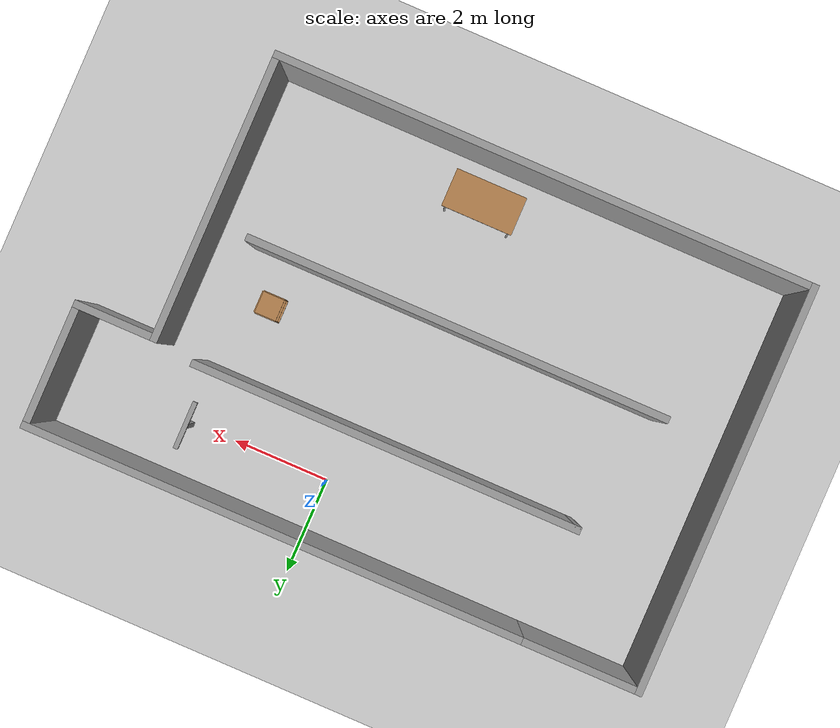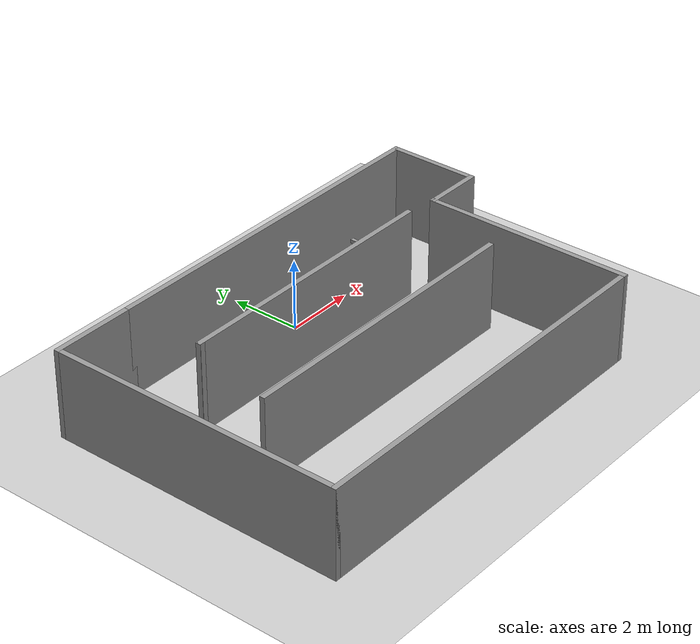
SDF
<sdf version="1.6">
 <world name="default">
  <plugin name="hello" filename="libhello.so"/>
  <plugin name="hello" filename="libhello.so"/>
  <plugin name="collision_map_creator" filename="libcollision_map_creator.so"/>
  <light name="sun" type="directional">
   <pose>0 0 10 0 -0 0</pose>
   <diffuse>0.8 0.8 0.8 1</diffuse>
   <specular>0.2 0.2 0.2 1</specular>
   <attenuation>
    <range>1000</range>
    <constant>0.9</constant>
    <linear>0.01</linear>
    <quadratic>0.001</quadratic>
   </attenuation>
   <direction>-0.5 0.1 -0.9</direction>
  </light>
  <model name="ground_plane">
   <static>1</static>
   <link name="link">
    <collision name="collision">
     <geometry><plane><normal>0 0 1</normal><size>100 100</size></plane></geometry>
     <surface>
      <contact><collide_bitmask>65535</collide_bitmask></contact>
      <friction><ode><mu>100</mu><mu2>50</mu2></ode></friction>
     </surface>
    </collision>
    <visual name="visual">
     <cast_shadows>0</cast_shadows>
     <geometry><plane><normal>0 0 1</normal><size>100 100</size></plane></geometry>
     <material>
      <script><uri>file://media/materials/scripts/gazebo.material</uri><name>Gazebo/Grey</name></script>
     </material>
    </visual>
   </link>
  </model>
  <gravity>0 0 -9.8</gravity>
  <magnetic_field>6e-06 2.3e-05 -4.2e-05</magnetic_field>
  <atmosphere type="adiabatic"/>
  <physics name="default_physics" default="0" type="ode">
   <max_step_size>0.001</max_step_size>
   <real_time_factor>1</real_time_factor>
   <real_time_update_rate>1000</real_time_update_rate>
  </physics>
  <scene><ambient>0.4 0.4 0.4 1</ambient><background>0.7 0.7 0.7 1</background><shadows>1</shadows></scene>
  <spherical_coordinates>
   <surface_model>EARTH_WGS84</surface_model>
   <latitude_deg>0</latitude_deg>
   <longitude_deg>0</longitude_deg>
   <elevation>0</elevation>
   <heading_deg>0</heading_deg>
  </spherical_coordinates>
  <model name="anotherrone_clone_0">
   <link name="link_0_clone">
    <pose>1.00397 -1.20326 1.05 1.57079 -0 0</pose>
    <inertial>
     <mass>1</mass>
     <inertia>
      <ixx>0.166667</ixx>
      <ixy>0</ixy>
      <ixz>0</ixz>
      <iyy>0.166667</iyy>
      <iyz>0</iyz>
      <izz>0.166667</izz>
     </inertia>
    </inertial>
    <visual name="visual">
     <geometry><box><size>0.1 0.1 1</size></box></geometry>
     <material>
      <lighting>1</lighting>
      <script><uri>file://media/materials/scripts/gazebo.material</uri><name>Gazebo/Grey</name></script>
      <shader type="pixel"><normal_map>__default__</normal_map></shader>
      <ambient>0.3 0.3 0.3 1</ambient>
      <diffuse>0.7 0.7 0.7 1</diffuse>
      <specular>0.01 0.01 0.01 1</specular>
      <emissive>0 0 0 1</emissive>
     </material>
    </visual>
    <collision name="collision">
     <geometry><box><size>0.1 0.1 1</size></box></geometry>
     <surface>
      <friction>
       <ode><mu>1</mu><mu2>1</mu2><fdir1>0 0 0</fdir1><slip1>0</slip1><slip2>0</slip2></ode>
       <torsional>
        <coefficient>1</coefficient>
        <patch_radius>0</patch_radius>
        <surface_radius>0</surface_radius>
        <use_patch_radius>1</use_patch_radius>
        <ode><slip>0</slip></ode>
       </torsional>
      </friction>
      <bounce><restitution_coefficient>0</restitution_coefficient><threshold>1e+06</threshold></bounce>
      <contact>
       <collide_without_contact>0</collide_without_contact>
       <collide_without_contact_bitmask>1</collide_without_contact_bitmask>
       <collide_bitmask>1</collide_bitmask>
       <ode>
        <soft_cfm>0</soft_cfm>
        <soft_erp>0.2</soft_erp>
        <kp>1e+13</kp>
        <kd>1</kd>
        <max_vel>0.01</max_vel>
        <min_depth>0</min_depth>
       </ode>
       <bullet>
        <split_impulse>1</split_impulse>
        <split_impulse_penetration_threshold>-0.01</split_impulse_penetration_threshold>
        <soft_cfm>0</soft_cfm>
        <soft_erp>0.2</soft_erp>
        <kp>1e+13</kp>
        <kd>1</kd>
       </bullet>
      </contact>
     </surface>
    </collision>
   </link>
   <link name="link_0_clone_clone">
    <pose>1.00397 -1.20326 0.499999 0 -0 0</pose>
    <inertial>
     <mass>1</mass>
     <inertia>
      <ixx>0.166667</ixx>
      <ixy>0</ixy>
      <ixz>0</ixz>
      <iyy>0.166667</iyy>
      <iyz>0</iyz>
      <izz>0.166667</izz>
     </inertia>
    </inertial>
    <visual name="visual">
     <geometry><box><size>0.1 0.1 1</size></box></geometry>
     <material>
      <lighting>1</lighting>
      <script><uri>file://media/materials/scripts/gazebo.material</uri><name>Gazebo/Grey</name></script>
      <shader type="pixel"><normal_map>__default__</normal_map></shader>
      <ambient>0.3 0.3 0.3 1</ambient>
      <diffuse>0.7 0.7 0.7 1</diffuse>
      <specular>0.01 0.01 0.01 1</specular>
      <emissive>0 0 0 1</emissive>
     </material>
    </visual>
    <collision name="collision">
     <geometry><box><size>0.1 0.1 1</size></box></geometry>
     <surface>
      <friction>
       <ode><mu>1</mu><mu2>1</mu2><fdir1>0 0 0</fdir1><slip1>0</slip1><slip2>0</slip2></ode>
       <torsional>
        <coefficient>1</coefficient>
        <patch_radius>0</patch_radius>
        <surface_radius>0</surface_radius>
        <use_patch_radius>1</use_patch_radius>
        <ode><slip>0</slip></ode>
       </torsional>
      </friction>
      <bounce><restitution_coefficient>0</restitution_coefficient><threshold>1e+06</threshold></bounce>
      <contact>
       <collide_without_contact>0</collide_without_contact>
       <collide_without_contact_bitmask>1</collide_without_contact_bitmask>
       <collide_bitmask>1</collide_bitmask>
       <ode>
        <soft_cfm>0</soft_cfm>
        <soft_erp>0.2</soft_erp>
        <kp>1e+13</kp>
        <kd>1</kd>
        <max_vel>0.01</max_vel>
        <min_depth>0</min_depth>
       </ode>
       <bullet>
        <split_impulse>1</split_impulse>
        <split_impulse_penetration_threshold>-0.01</split_impulse_penetration_threshold>
        <soft_cfm>0</soft_cfm>
        <soft_erp>0.2</soft_erp>
        <kp>1e+13</kp>
        <kd>1</kd>
       </bullet>
      </contact>
     </surface>
    </collision>
   </link>
   <joint name="link_0_clone_clone_JOINT_0" type="revolute">
    <parent>link_0_clone_clone</parent>
    <child>link_0_clone</child>
    <axis>
     <xyz>0 -1 0</xyz>
     <use_parent_model_frame>0</use_parent_model_frame>
     <limit>
      <lower>-1.79769e+308</lower>
      <upper>1.79769e+308</upper>
      <effort>-1</effort>
      <velocity>-1</velocity>
     </limit>
     <dynamics>
      <spring_reference>0</spring_reference>
      <spring_stiffness>0</spring_stiffness>
      <damping>0</damping>
     </dynamics>
    </axis>
    <physics>
     <ode><limit><cfm>0</cfm><erp>0.2</erp></limit><suspension><cfm>0</cfm><erp>0.2</erp></suspension></ode>
    </physics>
   </joint>
   <static>0</static>
   <pose>1.95543 1.23393 -1.1e-05 -7e-06 -4e-06 5.5e-05</pose>
  </model>
  <model name="cabinet">
   <static>1</static>
   <link name="cabinet_bottom_plate">
    <inertial>
     <pose>0 0 -1 0 -0 0</pose>
     <inertia><ixx>2.05</ixx><ixy>0</ixy><ixz>0</ixz><iyy>2.05</iyy><iyz>0</iyz><izz>2.05</izz></inertia>
     <mass>25</mass>
    </inertial>
    <collision name="cabinet_bottom_plate_geom">
     <pose>0 0 0.01 0 -0 0</pose>
     <geometry><box><size>0.45 0.45 0.02</size></box></geometry>
    </collision>
    <visual name="cabinet_bottom_plate_geom_visual">
     <pose>0 0 0.01 0 -0 0</pose>
     <geometry><box><size>0.45 0.45 0.02</size></box></geometry>
     <material>
      <script><uri>file://media/materials/scripts/gazebo.material</uri><name>Gazebo/Wood</name></script>
     </material>
    </visual>
    <collision name="cabinet_bottom_plate_geom_cabinet_back_plate">
     <pose>0.235 0 0.51 0 -0 0</pose>
     <geometry><box><size>0.02 0.45 1.02</size></box></geometry>
    </collision>
    <visual name="cabinet_bottom_plate_geom_cabinet_back_plate_visual">
     <pose>0.235 0 0.51 0 -0 0</pose>
     <geometry><box><size>0.02 0.45 1.02</size></box></geometry>
     <material>
      <script><uri>file://media/materials/scripts/gazebo.material</uri><name>Gazebo/Wood</name></script>
     </material>
    </visual>
    <collision name="cabinet_bottom_plate_geom_cabinet_left_plate">
     <pose>0 0.235 0.51 0 -0 0</pose>
     <geometry><box><size>0.45 0.02 1.02</size></box></geometry>
    </collision>
    <visual name="cabinet_bottom_plate_geom_cabinet_left_plate_visual">
     <pose>0 0.235 0.51 0 -0 0</pose>
     <geometry><box><size>0.45 0.02 1.02</size></box></geometry>
     <material>
      <script><uri>file://media/materials/scripts/gazebo.material</uri><name>Gazebo/Wood</name></script>
     </material>
    </visual>
    <collision name="cabinet_bottom_plate_geom_cabinet_middle_plate">
     <pose>0 0 0.51 0 -0 0</pose>
     <geometry><box><size>0.45 0.45 0.02</size></box></geometry>
    </collision>
    <visual name="cabinet_bottom_plate_geom_cabinet_middle_plate_visual">
     <pose>0 0 0.51 0 -0 0</pose>
     <geometry><box><size>0.45 0.45 0.02</size></box></geometry>
     <material>
      <script><uri>file://media/materials/scripts/gazebo.material</uri><name>Gazebo/Wood</name></script>
     </material>
    </visual>
    <collision name="cabinet_bottom_plate_geom_cabinet_right_plate">
     <pose>0 -0.235 0.51 0 -0 0</pose>
     <geometry><box><size>0.45 0.02 1.02</size></box></geometry>
    </collision>
    <visual name="cabinet_bottom_plate_geom_cabinet_right_plate_visual">
     <pose>0 -0.235 0.51 0 -0 0</pose>
     <geometry><box><size>0.45 0.02 1.02</size></box></geometry>
     <material>
      <script><uri>file://media/materials/scripts/gazebo.material</uri><name>Gazebo/Wood</name></script>
     </material>
    </visual>
    <collision name="cabinet_bottom_plate_geom_cabinet_top_plate">
     <pose>0 0 1.01 0 -0 0</pose>
     <geometry><box><size>0.45 0.45 0.02</size></box></geometry>
    </collision>
    <visual name="cabinet_bottom_plate_geom_cabinet_top_plate_visual">
     <pose>0 0 1.01 0 -0 0</pose>
     <geometry><box><size>0.45 0.45 0.02</size></box></geometry>
     <material>
      <script><uri>file://media/materials/scripts/gazebo.material</uri><name>Gazebo/Wood</name></script>
     </material>
    </visual>
   </link>
   <pose>2.37507 -2.78574 0 0 -0 0</pose>
  </model>
  <model name="table">
   <static>1</static>
   <link name="link">
    <collision name="surface">
     <pose>0 0 1 0 -0 0</pose>
     <geometry><box><size>1.5 0.8 0.03</size></box></geometry>
     <surface><friction><ode><mu>0.6</mu><mu2>0.6</mu2></ode></friction></surface>
    </collision>
    <visual name="visual1">
     <pose>0 0 1 0 -0 0</pose>
     <geometry><box><size>1.5 0.8 0.03</size></box></geometry>
     <material>
      <script><uri>file://media/materials/scripts/gazebo.material</uri><name>Gazebo/Wood</name></script>
     </material>
    </visual>
    <collision name="front_left_leg">
     <pose>0.68 0.38 0.5 0 -0 0</pose>
     <geometry><cylinder><radius>0.02</radius><length>1</length></cylinder></geometry>
    </collision>
    <visual name="front_left_leg">
     <pose>0.68 0.38 0.5 0 -0 0</pose>
     <geometry><cylinder><radius>0.02</radius><length>1</length></cylinder></geometry>
     <material>
      <script><uri>file://media/materials/scripts/gazebo.material</uri><name>Gazebo/Grey</name></script>
     </material>
    </visual>
    <collision name="front_right_leg">
     <pose>0.68 -0.38 0.5 0 -0 0</pose>
     <geometry><cylinder><radius>0.02</radius><length>1</length></cylinder></geometry>
    </collision>
    <visual name="front_right_leg">
     <pose>0.68 -0.38 0.5 0 -0 0</pose>
     <geometry><cylinder><radius>0.02</radius><length>1</length></cylinder></geometry>
     <material>
      <script><uri>file://media/materials/scripts/gazebo.material</uri><name>Gazebo/Grey</name></script>
     </material>
    </visual>
    <collision name="back_right_leg">
     <pose>-0.68 -0.38 0.5 0 -0 0</pose>
     <geometry><cylinder><radius>0.02</radius><length>1</length></cylinder></geometry>
    </collision>
    <visual name="back_right_leg">
     <pose>-0.68 -0.38 0.5 0 -0 0</pose>
     <geometry><cylinder><radius>0.02</radius><length>1</length></cylinder></geometry>
     <material>
      <script><uri>file://media/materials/scripts/gazebo.material</uri><name>Gazebo/Grey</name></script>
     </material>
    </visual>
    <collision name="back_left_leg">
     <pose>-0.68 0.38 0.5 0 -0 0</pose>
     <geometry><cylinder><radius>0.02</radius><length>1</length></cylinder></geometry>
    </collision>
    <visual name="back_left_leg">
     <pose>-0.68 0.38 0.5 0 -0 0</pose>
     <geometry><cylinder><radius>0.02</radius><length>1</length></cylinder></geometry>
     <material>
      <script><uri>file://media/materials/scripts/gazebo.material</uri><name>Gazebo/Grey</name></script>
     </material>
    </visual>
   </link>
   <pose>-0.699943 -6.36243 0 0 -0 0</pose>
  </model>
  <model name="multiplePaths">
   <pose>-0.75 -3.035 0 0 -0 0</pose>
   <link name="Wall_0">
    <collision name="Wall_0_Collision">
     <geometry><box><size>8.75 0.15 2.5</size></box></geometry>
     <pose>0 0 1.25 0 -0 0</pose>
    </collision>
    <visual name="Wall_0_Visual">
     <pose>0 0 1.25 0 -0 0</pose>
     <geometry><box><size>8.75 0.15 2.5</size></box></geometry>
     <material>
      <script><uri>file://media/materials/scripts/gazebo.material</uri><name>Gazebo/Grey</name></script>
      <ambient>1 1 1 1</ambient>
     </material>
     <meta><layer>0</layer></meta>
    </visual>
    <pose>-0.45 -0.775 0 0 -0 0</pose>
   </link>
   <link name="Wall_2">
    <collision name="Wall_2_Collision">
     <geometry><box><size>8.05247 0.15 2.5</size></box></geometry>
     <pose>0 0 1.25 0 -0 0</pose>
    </collision>
    <visual name="Wall_2_Visual">
     <pose>0 0 1.25 0 -0 0</pose>
     <geometry><box><size>8.05247 0.15 2.5</size></box></geometry>
     <material>
      <script><uri>file://media/materials/scripts/gazebo.material</uri><name>Gazebo/Grey</name></script>
      <ambient>1 1 1 1</ambient>
     </material>
     <meta><layer>0</layer></meta>
    </visual>
    <pose>-0.092561 1.825 0 0 -0 3.14159</pose>
   </link>
   <link name="Wall_21">
    <collision name="Wall_21_Collision">
     <geometry><box><size>8.5 0.15 2.5</size></box></geometry>
     <pose>0 0 1.25 0 -0 0</pose>
    </collision>
    <visual name="Wall_21_Visual">
     <pose>0 0 1.25 0 -0 0</pose>
     <geometry><box><size>8.5 0.15 2.5</size></box></geometry>
     <material>
      <script><uri>file://media/materials/scripts/gazebo.material</uri><name>Gazebo/Grey</name></script>
      <ambient>1 1 1 1</ambient>
     </material>
     <meta><layer>0</layer></meta>
    </visual>
    <pose>-6.35 0 0 0 0 -1.5708</pose>
   </link>
   <link name="Wall_22">
    <collision name="Wall_22_Collision">
     <geometry><box><size>11.25 0.15 2.5</size></box></geometry>
     <pose>0 0 1.25 0 -0 0</pose>
    </collision>
    <visual name="Wall_22_Visual">
     <pose>0 0 1.25 0 -0 0</pose>
     <geometry><box><size>11.25 0.15 2.5</size></box></geometry>
     <material>
      <script><uri>file://media/materials/scripts/gazebo.material</uri><name>Gazebo/Grey</name></script>
      <ambient>1 1 1 1</ambient>
     </material>
     <meta><layer>0</layer></meta>
    </visual>
    <pose>-0.8 -4.175 0 0 -0 0</pose>
   </link>
   <link name="Wall_24">
    <collision name="Wall_24_Collision">
     <geometry><box><size>6 0.15 2.5</size></box></geometry>
     <pose>0 0 1.25 0 -0 0</pose>
    </collision>
    <visual name="Wall_24_Visual">
     <pose>0 0 1.25 0 -0 0</pose>
     <geometry><box><size>6 0.15 2.5</size></box></geometry>
     <material>
      <script><uri>file://media/materials/scripts/gazebo.material</uri><name>Gazebo/Grey</name></script>
      <ambient>1 1 1 1</ambient>
     </material>
     <meta><layer>0</layer></meta>
    </visual>
    <pose>4.75 -1.25 0 0 -0 1.5708</pose>
   </link>
   <link name="Wall_29">
    <collision name="Wall_29_Collision">
     <geometry><box><size>2.5 0.15 2.5</size></box></geometry>
     <pose>0 0 1.25 0 -0 0</pose>
    </collision>
    <visual name="Wall_29_Visual">
     <pose>0 0 1.25 0 -0 0</pose>
     <geometry><box><size>2.5 0.15 2.5</size></box></geometry>
     <material>
      <script><uri>file://media/materials/scripts/gazebo.material</uri><name>Gazebo/Grey</name></script>
      <ambient>1 1 1 1</ambient>
     </material>
     <meta><layer>0</layer></meta>
    </visual>
    <pose>-5.175 4.175 0 0 -0 0</pose>
   </link>
   <link name="Wall_3">
    <collision name="Wall_3_Collision">
     <geometry><box><size>0.15 0.15 2.5</size></box></geometry>
     <pose>0 0 1.25 0 -0 0</pose>
    </collision>
    <visual name="Wall_3_Visual">
     <pose>0 0 1.25 0 -0 0</pose>
     <geometry><box><size>0.15 0.15 2.5</size></box></geometry>
     <material>
      <script><uri>file://media/materials/scripts/gazebo.material</uri><name>Gazebo/Grey</name></script>
      <ambient>1 1 1 1</ambient>
     </material>
     <meta><layer>0</layer></meta>
    </visual>
    <pose>-4.03512 1.825 0 0 -0 0</pose>
   </link>
   <link name="Wall_32">
    <collision name="Wall_32_Collision">
     <geometry><box><size>10.5 0.15 2.5</size></box></geometry>
     <pose>0 0 1.25 0 -0 0</pose>
    </collision>
    <visual name="Wall_32_Visual">
     <pose>0 0 1.25 0 -0 0</pose>
     <geometry><box><size>10.5 0.15 2.5</size></box></geometry>
     <material>
      <script><uri>file://media/materials/scripts/gazebo.material</uri><name>Gazebo/Grey</name></script>
      <ambient>1 1 1 1</ambient>
     </material>
     <meta><layer>0</layer></meta>
    </visual>
    <pose>1.175 4.175 0 0 -0 0</pose>
   </link>
   <link name="Wall_34">
    <collision name="Wall_34_Collision">
     <geometry><box><size>2.5 0.15 2.5</size></box></geometry>
     <pose>0 0 1.25 0 -0 0</pose>
    </collision>
    <visual name="Wall_34_Visual">
     <pose>0 0 1.25 0 -0 0</pose>
     <geometry><box><size>2.5 0.15 2.5</size></box></geometry>
     <material>
      <script><uri>file://media/materials/scripts/gazebo.material</uri><name>Gazebo/Grey</name></script>
      <ambient>1 1 1 1</ambient>
     </material>
     <meta><layer>0</layer></meta>
    </visual>
    <pose>6.35 3 0 0 0 -1.5708</pose>
   </link>
   <link name="Wall_36">
    <collision name="Wall_36_Collision">
     <geometry><box><size>1.75 0.15 2.5</size></box></geometry>
     <pose>0 0 1.25 0 -0 0</pose>
    </collision>
    <visual name="Wall_36_Visual">
     <pose>0 0 1.25 0 -0 0</pose>
     <geometry><box><size>1.75 0.15 2.5</size></box></geometry>
     <material>
      <script><uri>file://media/materials/scripts/gazebo.material</uri><name>Gazebo/Grey</name></script>
      <ambient>1 1 1 1</ambient>
     </material>
     <meta><layer>0</layer></meta>
    </visual>
    <pose>5.55 1.675 0 0 -0 0</pose>
   </link>
   <static>1</static>
  </model>
 </world>
</sdf>
